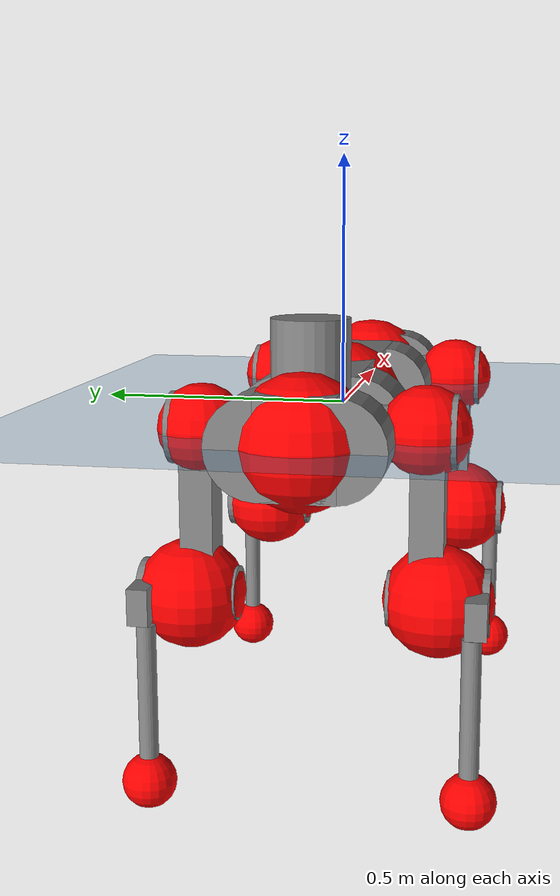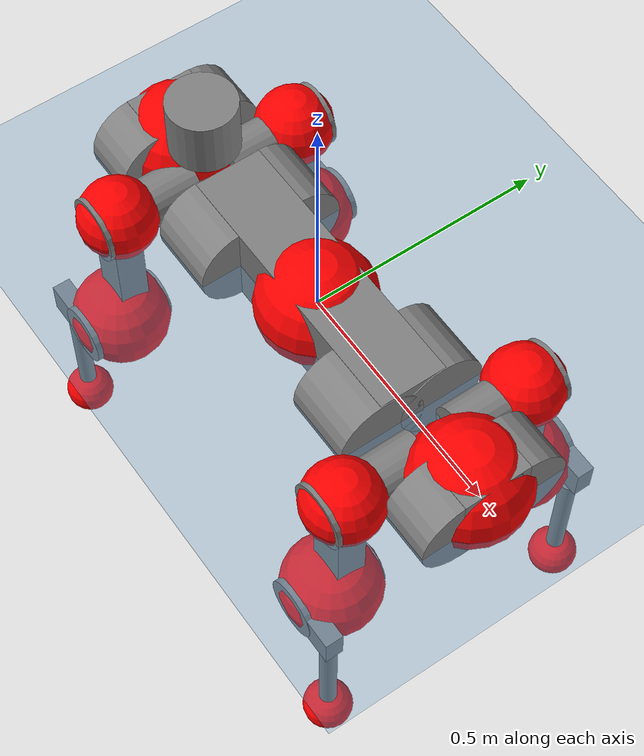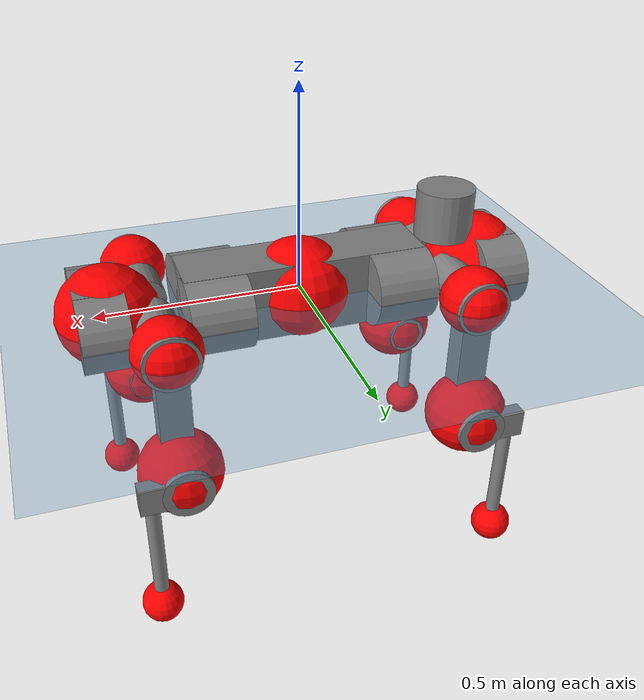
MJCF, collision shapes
<mujoco model="anymal_c">
  <compiler angle="radian" assetdir="assets" balanceinertia="true" inertiafromgeom="false"/>

  <option timestep="0.005" density="1.2" viscosity="2e-05"/>

  <size nkey="1"/>

  <visual>
    <quality shadowsize="8192"/>
    <map shadowclip="0.5"/>
  </visual>

  <default>
    <default class="/">
      <material specular="0" shininess="0.25"/>
      <geom contype="0" conaffinity="0" group="1" solref="-1000 -80"/>
      <site size="0.01 0.005 0.005" group="5"/>
      <general forcelimited="true" forcerange="-80 80" biastype="affine" gainprm="80" biasprm="0 -80 -2"/>
      <default class="anymal_c">
        <joint armature="0.01" damping="0.01" frictionloss="0.1"/>
        <default class="visual">
          <geom type="mesh" group="2"/>
          <default class="visual_zflip"/>
        </default>
        <default class="collision">
          <geom type="cylinder" group="3"/>
          <default class="foot">
            <geom size="0.03 0 0" type="sphere" condim="6" priority="1" friction="0.8 0.02 0.01" solimp="0.015 1 0.03"/>
          </default>
        </default>
      </default>
      <default class="reward_collision_sphere">
        <geom group="5" rgba="1 0 0 1"/>
      </default>
    </default>
  </default>

  <asset>
    <texture type="skybox" colorspace="auto" name="//unnamed_texture_0" builtin="gradient" rgb1="0.95 0.95 0.95" rgb2="0.95 0.95 0.95" width="100" height="600"/>
    <texture type="2d" colorspace="auto" name="texplane" builtin="checker" rgb1="0.345 0.575 0.748" rgb2="0.345 0.575 0.748" markrgb="1 1 1" width="512" height="512"/>
    <texture type="2d" colorspace="linear" name="base" file="base.png"/>
    <texture type="2d" colorspace="linear" name="top_shell" file="top_shell.png"/>
    <texture type="2d" colorspace="linear" name="bottom_shell" file="bottom_shell.png"/>
    <texture type="2d" colorspace="linear" name="remote" file="remote.png"/>
    <texture type="2d" colorspace="linear" name="hatch" file="hatch.png"/>
    <texture type="2d" colorspace="linear" name="handle" file="handle.png"/>
    <texture type="2d" colorspace="linear" name="face" file="face.png"/>
    <texture type="2d" colorspace="linear" name="battery" file="battery.png"/>
    <texture type="2d" colorspace="linear" name="lidar_cage" file="lidar_cage.png"/>
    <texture type="2d" colorspace="linear" name="depth_camera" file="depth_camera.png"/>
    <texture type="2d" colorspace="linear" name="wide_angle_camera" file="wide_angle_camera.png"/>
    <texture type="2d" colorspace="linear" name="lidar" file="lidar.png"/>
    <texture type="2d" colorspace="linear" name="drive" file="drive.png"/>
    <texture type="2d" colorspace="linear" name="hip_l" file="hip_l.png"/>
    <texture type="2d" colorspace="linear" name="shank_l" file="shank_l.png"/>
    <texture type="2d" colorspace="linear" name="foot" file="foot.png"/>
    <texture type="2d" colorspace="linear" name="thigh" file="thigh.png"/>
    <texture type="2d" colorspace="linear" name="shank_r" file="shank_r.png"/>
    <texture type="2d" colorspace="linear" name="hip_r" file="hip_r.png"/>
    <material name="MatPlane" class="/" texture="texplane" texuniform="true" texrepeat="2 2" specular="0.9" shininess="0.5"/>
    <material name="black_plastic" class="/" rgba="0.007 0.007 0.007 1"/>
    <material name="green" class="/" rgba="0.052 0.178 0.033 1"/>
    <material name="red" class="/" rgba="0.178 0.006 0.005 1"/>
    <material name="yellow" class="/" rgba="0.178 0.119 0.006 1"/>
    <material name="lwl" class="/" rgba="0.8 0.8 0.8 1"/>
    <material name="base" class="/" texture="base"/>
    <material name="top_shell" class="/" texture="top_shell"/>
    <material name="bottom_shell" class="/" texture="bottom_shell"/>
    <material name="hip_l" class="/" texture="hip_l"/>
    <material name="thigh" class="/" texture="thigh"/>
    <material name="shank_l" class="/" texture="shank_l"/>
    <material name="foot" class="/" texture="foot"/>
    <material name="hip_r" class="/" texture="hip_r"/>
    <material name="shank" class="/" texture="shank_r"/>
    <material name="hatch" class="/" texture="hatch"/>
    <material name="remote" class="/" texture="remote"/>
    <material name="handle" class="/" texture="handle"/>
    <material name="face" class="/" texture="face"/>
    <material name="depth_camera" class="/" texture="depth_camera"/>
    <material name="wide_angle_camera" class="/" texture="wide_angle_camera"/>
    <material name="battery" class="/" texture="battery"/>
    <material name="lidar_cage" class="/" texture="lidar_cage"/>
    <material name="lidar" class="/" texture="lidar"/>
    <material name="drive" class="/" texture="drive"/>
    <mesh name="base_0" class="/" file="base_0.obj"/>
    <mesh name="base_1" class="/" file="base_1.obj"/>
    <mesh name="base_2" class="/" file="base_2.obj"/>
    <mesh name="base_3" class="/" file="base_3.obj"/>
    <mesh name="base_4" class="/" file="base_4.obj"/>
    <mesh name="base_5" class="/" file="base_5.obj"/>
    <mesh name="top_shell" class="/" file="top_shell.obj"/>
    <mesh name="bottom_shell" class="/" file="bottom_shell.obj"/>
    <mesh name="remote" class="/" file="remote.obj"/>
    <mesh name="handle" class="/" file="handle.obj"/>
    <mesh name="face" class="/" file="face.obj"/>
    <mesh name="wide_angle_camera" class="/" file="wide_angle_camera.obj"/>
    <mesh name="depth_camera" class="/" file="depth_camera.obj"/>
    <mesh name="battery" class="/" file="battery.obj"/>
    <mesh name="lidar_cage" class="/" file="lidar_cage.obj"/>
    <mesh name="lidar" class="/" file="lidar.obj"/>
    <mesh name="drive" class="/" file="drive.obj"/>
    <mesh name="hip_l" class="/" file="hip_l.obj"/>
    <mesh name="thigh" class="/" file="thigh.obj"/>
    <mesh name="shank_l" class="/" file="shank_l.obj"/>
    <mesh name="foot" class="/" file="foot.obj"/>
    <mesh name="hip_r" class="/" file="hip_r.obj"/>
    <mesh name="hatch" class="/" file="hatch.obj"/>
    <mesh name="shank_r" class="/" file="shank_r.obj"/>
  </asset>

  <worldbody>
    <geom name="floor" class="/" size="100 100 0.125" type="plane" group="0" material="MatPlane"/>
    <light name="toplight_shadow" class="/" pos="0 0 5" dir="0.0990148 0.0990148 -0.990148" type="directional" ambient="0.04 0.04 0.04" diffuse="0.55 0.55 0.55" specular="0.12 0.12 0.12"/>
    <light name="toplight_fill" class="/" pos="0 0 5" dir="0.0990148 0.0990148 -0.990148" type="directional" castshadow="false" ambient="0.04 0.04 0.04" diffuse="0.3 0.3 0.3" specular="0.08 0.08 0.08"/>
    <body name="trunk" childclass="anymal_c" pos="-0.000936073 0.000211806 0.00184948" quat="0.999999 -0.0003105 -0.000800506 0.000884367">
      <inertial pos="0.00220415 -0.00201106 0.0509154" quat="0.498544 0.499542 0.501559 0.500349" mass="20.6385" diaginertia="0.750886 0.470984 0.328375"/>
      <joint name="//unnamed_joint_0" type="free" armature="0" damping="0" frictionloss="0"/>
      <geom name="//unnamed_geom_1" class="visual" material="green" mesh="base_0"/>
      <geom name="//unnamed_geom_2" class="visual" material="yellow" mesh="base_1"/>
      <geom name="//unnamed_geom_3" class="visual" material="red" mesh="base_2"/>
      <geom name="//unnamed_geom_4" class="visual" material="black_plastic" mesh="base_3"/>
      <geom name="//unnamed_geom_5" class="visual" material="lwl" mesh="base_4"/>
      <geom name="//unnamed_geom_6" class="visual" material="base" mesh="base_5"/>
      <geom name="trunk_1" class="collision" size="0.296548 0.0715805 0.0920321" type="box"/>
      <geom name="trunk_2" class="collision" size="0.0920321 0.0741369" pos="0.224751 0.0662597 0" quat="0.707107 0 0.707107 0"/>
      <geom name="trunk_3" class="collision" size="0.0920321 0.0741369" pos="-0.224751 0.0662597 0" quat="0.707107 0 0.707107 0"/>
      <geom name="trunk_4" class="collision" size="0.0920321 0.0741369" pos="0.224751 -0.0662597 0" quat="0.707107 0 0.707107 0"/>
      <geom name="trunk_5" class="collision" size="0.0920321 0.0741369" pos="-0.224751 -0.0662597 0" quat="0.707107 0 0.707107 0"/>
      <geom name="//unnamed_geom_12" class="visual" material="top_shell" mesh="top_shell"/>
      <geom name="//unnamed_geom_13" class="visual" material="bottom_shell" mesh="bottom_shell"/>
      <geom name="//unnamed_geom_14" class="visual" material="remote" mesh="remote"/>
      <geom name="//unnamed_geom_15" class="visual" material="handle" mesh="handle"/>
      <geom name="//unnamed_geom_16" class="visual" pos="0.428319 0 0" quat="1 0 0 0" material="face" mesh="face"/>
      <geom name="trunk_6" class="collision" size="0.0562418 0.0715805 0.0920321" pos="0.485153 0 0" type="box"/>
      <geom name="//unnamed_geom_18" class="collision" size="0.0920321 0.0562418" pos="0.485153 0.0662597 0" quat="0.707107 0 0.707107 0"/>
      <geom name="//unnamed_geom_19" class="collision" size="0.0920321 0.0562418" pos="0.485153 -0.0662597 0" quat="0.707107 0 0.707107 0"/>
      <geom name="//unnamed_geom_20" class="visual" pos="0.477044 0 -0.0321787" quat="0.965926 0 0.258819 0" material="depth_camera" mesh="depth_camera"/>
      <geom name="//unnamed_geom_21" class="visual" pos="0.530103 0 0.0162848" material="wide_angle_camera" mesh="wide_angle_camera"/>
      <geom name="//unnamed_geom_22" class="visual_zflip" pos="-0.428319 0 0" quat="0 0 0 1" material="face" mesh="face"/>
      <geom name="trunk_7" class="collision" size="0.0562418 0.0715805 0.0920321" pos="-0.485153 0 0" quat="0 0 0 1" type="box"/>
      <geom name="//unnamed_geom_24" class="collision" size="0.0920321 0.0562418" pos="-0.485153 -0.0662597 0" quat="0 -0.707107 0 0.707107"/>
      <geom name="//unnamed_geom_25" class="collision" size="0.0920321 0.0562418" pos="-0.485153 0.0662597 0" quat="0 -0.707107 0 0.707107"/>
      <geom name="//unnamed_geom_26" class="visual" pos="-0.477044 0 -0.0321787" quat="0 -0.258819 0 0.965926" material="depth_camera" mesh="depth_camera"/>
      <geom name="//unnamed_geom_27" class="visual_zflip" pos="-0.530103 0 0.0162848" quat="0 0 0 1" material="wide_angle_camera" mesh="wide_angle_camera"/>
      <geom name="//unnamed_geom_28" class="visual" material="battery" mesh="battery"/>
      <geom name="//unnamed_geom_29" class="visual" pos="0 0.0712381 0.0311873" quat="0.683013 -0.183013 0.183013 0.683013" material="depth_camera" mesh="depth_camera"/>
      <geom name="//unnamed_geom_30" class="visual" pos="0 -0.0712381 0.0311873" quat="0.683013 0.183013 0.183013 -0.683013" material="depth_camera" mesh="depth_camera"/>
      <geom name="//unnamed_geom_31" class="visual" pos="-0.376136 0 0.0799554" quat="1 0 0 0" material="lidar_cage" mesh="lidar_cage"/>
      <geom name="trunk_8" class="collision" size="0.0715805 0.0613547" pos="-0.376136 0 0.145225"/>
      <geom name="//unnamed_geom_33" class="visual" pos="-0.376136 -3.40909e-05 0.154689" quat="0.707107 0 0 -0.707107" material="lidar" mesh="lidar"/>
      <geom name="//unnamed_geom_34" class="visual" pos="0.309899 0.0984931 -2.43679e-09" quat="0.258819 0.965926 0 0" material="drive" mesh="drive"/>
      <geom name="//unnamed_geom_35" class="visual" pos="0.309899 -0.0984931 2.43679e-09" quat="0.258819 -0.965926 0 0" material="drive" mesh="drive"/>
      <geom name="//unnamed_geom_36" class="visual" pos="-0.309899 0.0984931 2.43679e-09" quat="0 0 0.965926 -0.258819" material="drive" mesh="drive"/>
      <geom name="//unnamed_geom_37" class="visual" pos="-0.309899 -0.0984931 -2.43679e-09" quat="0 0 -0.965926 -0.258819" material="drive" mesh="drive"/>
      <geom name="//unnamed_geom_38" class="visual" pos="0.119867 0 0.0794115" quat="1 0 0 0" material="hatch" mesh="hatch"/>
      <geom name="//unnamed_geom_39" class="reward_collision_sphere" size="0.122709"/>
      <geom name="//unnamed_geom_40" class="reward_collision_sphere" size="0.122709" pos="0.465003 0 0"/>
      <geom name="//unnamed_geom_41" class="reward_collision_sphere" size="0.122709" pos="-0.465003 0 0"/>
      <site name="imu" pos="0.264561 0.00744912 0.0427328" size="0.0102258"/>
      <camera name="track" pos="0 -1.89313 0" quat="0.707107 0.707107 0 0" mode="trackcom"/>
      <camera name="ego_camera" pos="0.465003 0 -0.0435131" quat="-0.5 -0.5 0.5 0.5"/>
      <body name="LF_HIP" pos="0.307661 0.0959601 -0.00151011" quat="0.259082 0.965855 -7.35543e-05 -0.000102623">
        <inertial pos="0.0587865 -0.0168519 -0.00781278" quat="-0.128198 0.710672 -0.134422 0.678558" mass="3.06038" diaginertia="0.00688036 0.00361027 0.0049879"/>
        <joint name="LF_HAA" pos="0 0 0" axis="0.999992 0.00360289 -0.00157473" range="-0.717989 0.535251" armature="0.00981106" damping="0.0247577" frictionloss="0.0878527"/>
        <geom name="//unnamed_geom_42" class="visual" pos="0 -0.000143345 2.35443e-05" quat="0.258819 -0.965926 0 0" material="hip_l" mesh="hip_l"/>
        <geom name="//unnamed_geom_43" class="visual" pos="0.0618971 -0.0739091 -0.0437163" quat="0.183013 -0.683013 0.683013 0.183013" material="drive" mesh="drive"/>
        <geom name="//unnamed_geom_44" class="collision" size="0.0511289 0.0715805" pos="0.0618971 -0.0113207 -0.00751146" quat="-0.353553 -0.612372 0.612372 -0.353553"/>
        <body name="LF_THIGH" pos="0.0594761 -0.0671924 -0.0439253" quat="0.183466 -0.682377 0.683477 0.183194">
          <inertial pos="0.0311005 -0.000139543 -0.264463" quat="0.993231 -0.00856082 -0.0709234 0.0915955" mass="3.21022" diaginertia="0.0362229 0.0227823 0.00657031"/>
          <joint name="LF_HFE" pos="0 0 0" axis="1 0.0001673 0.000668931" stiffness="0.00435912" range="-3.10222 3.19482" armature="0.00974078" damping="0.0203865" frictionloss="0.0879875"/>
          <geom name="//unnamed_geom_45" class="visual" pos="0.00172645 2.72048e-06 0" quat="0.707107 0 0 -0.707107" material="thigh" mesh="thigh"/>
          <geom name="//unnamed_geom_46" class="collision" size="0.0664676 0.0409031" pos="0.0413336 0 0" quat="0.5 0.5 -0.5 -0.5"/>
          <geom name="//unnamed_geom_47" class="collision" size="0.0383467 0.0306774 0.144505" pos="0.0310002 0 -0.153725" quat="0.707107 0 0 -0.707107" type="box"/>
          <geom name="//unnamed_geom_48" class="visual" pos="0.103644 0 -0.310031" quat="1 0 0 0" material="drive" mesh="drive"/>
          <geom name="//unnamed_geom_49" class="collision" size="0.0511289 0.0715805" pos="0.0313102 0 -0.310031" quat="0.707107 0 0.707107 0"/>
          <geom name="//unnamed_geom_50" class="reward_collision_sphere" size="0.0818063" pos="0.0258335 0 0"/>
          <body name="LF_SHANK" pos="0.103915 0.002045 -0.308381" quat="1 -2.94783e-06 0.000222608 -0.000364429">
            <inertial pos="0.00513031 -0.0575557 -0.0903499" quat="0.992884 -0.116295 -0.000757077 -0.0256119" mass="0.634099" diaginertia="0.0116505 0.00694495 0.0017142"/>
            <joint name="LF_KFE" pos="0 0 0" axis="0.999993 -0.00334484 -0.0014485" range="-3.08388 3.14524" armature="0.0110831" damping="0.00401337" frictionloss="0.102692"/>
            <geom name="//unnamed_geom_51" class="visual" pos="0.000562957 0.00300172 0" quat="0.707107 0 0 -0.707107" material="shank_l" mesh="shank_l"/>
            <geom name="LF_kfe_act" class="collision" size="0.0613547 0.0204516" pos="0.0206668 0 0" quat="0.5 0.5 -0.5 -0.5"/>
            <geom name="//unnamed_geom_53" class="collision" size="0.0587972 0.034512 0.019429" pos="0.0206668 -0.0544266 0" quat="0.5 0.5 -0.5 -0.5" type="box"/>
            <geom name="//unnamed_geom_54" class="visual" pos="0.013485 -0.0822832 -0.367653" quat="0.382683 0 0 -0.92388" material="foot" mesh="foot"/>
            <geom name="LF_calf" class="collision" size="0.0178951 0.144441" pos="0.0134851 -0.0832505 -0.183827" quat="0.707107 0 0 -0.707107"/>
            <geom name="LF_foot" class="foot" size="0.0304687" pos="0.0134851 -0.0832505 -0.343177" quat="0.707107 0 0 -0.707107"/>
            <geom name="//unnamed_geom_57" class="reward_collision_sphere" size="0.102258" pos="-0.051667 0 0"/>
            <geom name="//unnamed_geom_58" class="reward_collision_sphere" size="0.0511289" pos="0.0134851 -0.0832505 -0.343177"/>
            <site name="LF_foot" class="foot" pos="0.0134851 -0.0832505 -0.343177" quat="0.707107 0 0 -0.707107" size="0.0102258"/>
          </body>
        </body>
      </body>
      <body name="RF_HIP" pos="0.308799 -0.099263 -0.000635439" quat="0.258814 -0.965927 9.95121e-05 -0.000198704">
        <inertial pos="0.0558453 0.0144275 -0.0119177" quat="0.138573 0.677266 0.129756 0.710825" mass="3.00182" diaginertia="0.00666792 0.00379984 0.00483179"/>
        <joint name="RF_HAA" pos="0 0 0" axis="0.999943 -0.00427909 -0.00981994" range="-0.500994 0.718014" armature="0.0105013" damping="0" frictionloss="0.112514"/>
        <geom name="//unnamed_geom_59" class="visual" pos="0 0.000143344 2.35443e-05" quat="0.258819 0.965926 0 0" material="hip_r" mesh="hip_r"/>
        <geom name="//unnamed_geom_60" class="visual" pos="0.0618971 0.0739091 -0.0437163" quat="0.183013 0.683013 0.683013 -0.183013" material="drive" mesh="drive"/>
        <geom name="//unnamed_geom_61" class="collision" size="0.0511289 0.0715805" pos="0.0618971 0.0113207 -0.00751146" quat="-0.353553 0.612372 0.612372 0.353553"/>
        <body name="RF_THIGH" pos="0.0648833 0.0663843 -0.047583" quat="0.182664 0.682601 0.683645 -0.182536">
          <inertial pos="0.0333154 -0.00157705 -0.269827" quat="0.991984 -0.0166101 -0.0888531 0.0883035" mass="3.38397" diaginertia="0.0343526 0.0220512 0.00648583"/>
          <joint name="RF_HFE" pos="0 0 0" axis="0.999998 -9.86902e-05 0.00208667" range="-3.10746 3.13888" armature="0.00891174" damping="0.0114262" frictionloss="0.114159"/>
          <geom name="//unnamed_geom_62" class="visual" pos="0.00172645 2.72048e-06 0" quat="0.707107 0 0 -0.707107" material="thigh" mesh="thigh"/>
          <geom name="//unnamed_geom_63" class="collision" size="0.0664676 0.0409031" pos="0.0413336 0 0" quat="0.5 0.5 0.5 0.5"/>
          <geom name="//unnamed_geom_64" class="collision" size="0.0383467 0.0306774 0.144505" pos="0.0310002 0 -0.153725" quat="0.707107 0 0 0.707107" type="box"/>
          <geom name="//unnamed_geom_65" class="visual" pos="0.103644 0 -0.310031" quat="1 0 0 0" material="drive" mesh="drive"/>
          <geom name="//unnamed_geom_66" class="collision" size="0.0511289 0.0715805" pos="0.0313102 0 -0.310031" quat="0.707107 0 0.707107 0"/>
          <geom name="//unnamed_geom_67" class="reward_collision_sphere" size="0.0818063" pos="0.0258335 0 0"/>
          <body name="RF_SHANK" pos="0.100475 0.000824691 -0.311095" quat="0.999999 -0.000331511 0.000857352 -0.00104553">
            <inertial pos="0.00322906 0.0579473 -0.0874061" quat="0.99238 0.120275 0.000331516 0.0267386" mass="0.671854" diaginertia="0.0127041 0.00701415 0.00177011"/>
            <joint name="RF_KFE" pos="0 0 0" axis="0.999989 0.00163632 0.00446711" range="-3.1665 3.08036" armature="0.0116112" damping="0.0156395" frictionloss="0.11497"/>
            <geom name="//unnamed_geom_68" class="visual" pos="0.000562954 -0.00300171 0" quat="0.707107 0 0 0.707107" material="shank" mesh="shank_r"/>
            <geom name="RF_kfe_act" class="collision" size="0.0613547 0.0204516" pos="0.0206668 0 0" quat="0.5 0.5 0.5 0.5"/>
            <geom name="//unnamed_geom_70" class="collision" size="0.0587972 0.034512 0.019429" pos="0.0206668 0.0544266 0" quat="0.5 0.5 0.5 0.5" type="box"/>
            <geom name="//unnamed_geom_71" class="visual" pos="0.0134852 0.0822832 -0.367653" quat="0.382683 0 0 0.92388" material="foot" mesh="foot"/>
            <geom name="RF_calf" class="collision" size="0.0178951 0.144441" pos="0.0134851 0.0832505 -0.183827" quat="0.707107 0 0 0.707107"/>
            <geom name="RF_foot" class="foot" size="0.0278517" pos="0.0134851 0.0832505 -0.343177" quat="0.707107 0 0 0.707107"/>
            <geom name="//unnamed_geom_74" class="reward_collision_sphere" size="0.102258" pos="-0.051667 0 0"/>
            <geom name="//unnamed_geom_75" class="reward_collision_sphere" size="0.0511289" pos="0.0134851 0.0832505 -0.343177"/>
            <site name="RF_foot" class="foot" pos="0.0134851 0.0832505 -0.343177" quat="0.707107 0 0 0.707107" size="0.0102258"/>
          </body>
        </body>
      </body>
      <body name="LH_HIP" pos="-0.307622 0.096251 -0.00148842" quat="0.000274749 0.000317893 0.965819 -0.259217">
        <inertial pos="0.0588552 0.0170626 -0.0101696" quat="0.141871 0.685886 0.126163 0.702507" mass="3.01704" diaginertia="0.00702785 0.00377713 0.00491772"/>
        <joint name="LH_HAA" pos="0 0 0" axis="0.999919 -0.00481452 0.0118227" range="-0.492456 0.76304" armature="0.0108144" damping="0.00279006" frictionloss="0.101741"/>
        <geom name="//unnamed_geom_76" class="visual" pos="0 0.000143344 2.35443e-05" quat="-0.258819 -0.965926 0 0" material="hip_r" mesh="hip_r"/>
        <geom name="//unnamed_geom_77" class="visual" pos="0.0618971 0.0739091 -0.0437163" quat="0.183013 0.683013 0.683013 -0.183013" material="drive" mesh="drive"/>
        <geom name="//unnamed_geom_78" class="collision" size="0.0511289 0.0715805" pos="0.0618971 0.0113207 -0.00751146" quat="-0.353553 0.612372 0.612372 0.353553"/>
        <body name="LH_THIGH" pos="0.0611388 0.0669656 -0.0437936" quat="0.183553 0.682749 0.683188 -0.182799">
          <inertial pos="0.0315148 0.00158199 -0.268283" quat="0.992944 -0.00559998 -0.0796956 0.0876323" mass="3.08003" diaginertia="0.0341104 0.022687 0.00630966"/>
          <joint name="LH_HFE" pos="0 0 0" axis="1 -0.000524148 -0.000115995" stiffness="0.00610316" range="-3.19648 3.08328" armature="0.0103002" damping="0" frictionloss="0.103051"/>
          <geom name="//unnamed_geom_79" class="visual" pos="0.00172645 2.72048e-06 0" quat="0.707107 0 0 -0.707107" material="thigh" mesh="thigh"/>
          <geom name="//unnamed_geom_80" class="collision" size="0.0664676 0.0409031" pos="0.0413336 0 0" quat="0.5 0.5 -0.5 -0.5"/>
          <geom name="//unnamed_geom_81" class="collision" size="0.0383467 0.0306774 0.144505" pos="0.0310002 0 -0.153725" quat="0.707107 0 0 -0.707107" type="box"/>
          <geom name="//unnamed_geom_82" class="visual" pos="0.103644 0 -0.310031" quat="1 0 0 0" material="drive" mesh="drive"/>
          <geom name="//unnamed_geom_83" class="collision" size="0.0511289 0.0715805" pos="0.0313102 0 -0.310031" quat="0.707107 0 0.707107 0"/>
          <geom name="//unnamed_geom_84" class="reward_collision_sphere" size="0.0818063" pos="0.0258335 0 0"/>
          <body name="LH_SHANK" pos="0.102078 0.0011375 -0.312517" quat="1 -5.82572e-05 -0.000107486 8.33233e-05">
            <inertial pos="0.00835308 0.0598879 -0.0893446" quat="0.991168 0.129108 -0.00201736 0.0302144" mass="0.633344" diaginertia="0.0115915 0.0072243 0.00174185"/>
            <joint name="LH_KFE" pos="0 0 0" axis="1 -0.00033438 -0.000938704" stiffness="0.00290914" range="-3.10033 3.08407" armature="0.010997" damping="0.0165183" frictionloss="0.0904603"/>
            <geom name="//unnamed_geom_85" class="visual" pos="0.000562954 -0.00300171 0" quat="-0.707107 0 0 -0.707107" material="shank" mesh="shank_r"/>
            <geom name="LH_kfe_act" class="collision" size="0.0613547 0.0204516" pos="0.0206668 0 0" quat="0.5 0.5 -0.5 -0.5"/>
            <geom name="//unnamed_geom_87" class="collision" size="0.0587972 0.034512 0.019429" pos="0.0206668 0.0544266 0" quat="0.5 0.5 -0.5 -0.5" type="box"/>
            <geom name="//unnamed_geom_88" class="visual" pos="0.0134852 0.0822832 -0.367653" quat="-0.382683 0 0 -0.92388" material="foot" mesh="foot"/>
            <geom name="LH_calf" class="collision" size="0.0178951 0.144441" pos="0.0134851 0.0832505 -0.183827" quat="0.707107 0 0 -0.707107"/>
            <geom name="LH_foot" class="foot" size="0.0356387" pos="0.0134851 0.0832505 -0.343177" quat="0.707107 0 0 -0.707107"/>
            <geom name="//unnamed_geom_91" class="reward_collision_sphere" size="0.102258" pos="-0.051667 0 0"/>
            <geom name="//unnamed_geom_92" class="reward_collision_sphere" size="0.0511289" pos="0.0134851 0.0832505 -0.343177"/>
            <site name="LH_foot" class="foot" pos="0.0134851 0.0832505 -0.343177" quat="0.707107 0 0 -0.707107" size="0.0102258"/>
          </body>
        </body>
      </body>
      <body name="RH_HIP" pos="-0.309475 -0.099133 0.00256696" quat="0.0001232 9.96566e-05 -0.965908 -0.258887">
        <inertial pos="0.0557254 -0.0118606 -0.0102619" quat="-0.127653 0.709979 -0.134798 0.679312" mass="3.03752" diaginertia="0.00685715 0.00371666 0.00498952"/>
        <joint name="RH_HAA" pos="0 0 0" axis="0.999963 -0.00204846 -0.00829713" range="-0.758478 0.548271" armature="0.00904627" damping="0" frictionloss="0.101933"/>
        <geom name="//unnamed_geom_93" class="visual" pos="0 -0.000143345 2.35443e-05" quat="-0.258819 0.965926 0 0" material="hip_l" mesh="hip_l"/>
        <geom name="//unnamed_geom_94" class="visual" pos="0.0618971 -0.0739091 -0.0437163" quat="-0.183013 0.683013 -0.683013 -0.183013" material="drive" mesh="drive"/>
        <geom name="//unnamed_geom_95" class="collision" size="0.0511289 0.0715805" pos="0.0618971 -0.0113207 -0.00751146" quat="0.353553 0.612372 -0.612372 0.353553"/>
        <body name="RH_THIGH" pos="0.062799 -0.0664377 -0.0467476" quat="-0.183813 0.682873 -0.682761 -0.183671">
          <inertial pos="0.0312027 0.00271339 -0.266327" quat="0.993182 -0.00548135 -0.0809523 0.0837052" mass="3.06266" diaginertia="0.0332539 0.0221913 0.00620117"/>
          <joint name="RH_HFE" pos="0 0 0" axis="1 -8.47948e-05 0.00035381" range="-3.08469 3.12027" armature="0.0102711" damping="0.0204772" frictionloss="0.0996385"/>
          <geom name="//unnamed_geom_96" class="visual" pos="0.00172645 2.72048e-06 0" quat="0.707107 0 0 -0.707107" material="thigh" mesh="thigh"/>
          <geom name="//unnamed_geom_97" class="collision" size="0.0664676 0.0409031" pos="0.0413336 0 0" quat="0.5 0.5 0.5 0.5"/>
          <geom name="//unnamed_geom_98" class="collision" size="0.0383467 0.0306774 0.144505" pos="0.0310002 0 -0.153725" quat="0.707107 0 0 0.707107" type="box"/>
          <geom name="//unnamed_geom_99" class="visual" pos="0.103644 0 -0.310031" quat="1 0 0 0" material="drive" mesh="drive"/>
          <geom name="//unnamed_geom_100" class="collision" size="0.0511289 0.0715805" pos="0.0313102 0 -0.310031" quat="0.707107 0 0.707107 0"/>
          <geom name="//unnamed_geom_101" class="reward_collision_sphere" size="0.0818063" pos="0.0258335 0 0"/>
          <body name="RH_SHANK" pos="0.103319 0.00221138 -0.310833" quat="1 0.000706485 -1.3308e-05 0.000256081">
            <inertial pos="0.00810033 -0.0602656 -0.0866843" quat="0.99391 -0.107624 -0.0100043 -0.0214314" mass="0.628872" diaginertia="0.0116242 0.00701588 0.00165228"/>
            <joint name="RH_KFE" pos="0 0 0" axis="0.999959 -0.000747331 -0.00900477" range="-3.11843 3.17171" armature="0.00993251" damping="0.0161097" frictionloss="0.114796"/>
            <geom name="//unnamed_geom_102" class="visual" pos="0.000562957 0.00300172 0" quat="0.707107 0 0 -0.707107" material="shank_l" mesh="shank_l"/>
            <geom name="RH_kfe_act" class="collision" size="0.0613547 0.0204516" pos="0.0206668 0 0" quat="0.5 0.5 0.5 0.5"/>
            <geom name="//unnamed_geom_104" class="collision" size="0.0587972 0.034512 0.019429" pos="0.0206668 -0.0544266 0" quat="0.5 0.5 0.5 0.5" type="box"/>
            <geom name="//unnamed_geom_105" class="visual" pos="0.013485 -0.0822832 -0.367653" quat="0.382683 0 0 -0.92388" material="foot" mesh="foot"/>
            <geom name="RH_calf" class="collision" size="0.0178951 0.144441" pos="0.0134851 -0.0832505 -0.183827" quat="0.707107 0 0 0.707107"/>
            <geom name="RH_foot" class="foot" size="0.0264741" pos="0.0134851 -0.0832505 -0.343177" quat="0.707107 0 0 0.707107"/>
            <geom name="//unnamed_geom_108" class="reward_collision_sphere" size="0.102258" pos="-0.051667 0 0"/>
            <geom name="//unnamed_geom_109" class="reward_collision_sphere" size="0.0511289" pos="0.0134851 -0.0832505 -0.343177"/>
            <site name="RH_foot" class="foot" pos="0.0134851 -0.0832505 -0.343177" quat="0.707107 0 0 0.707107" size="0.0102258"/>
          </body>
        </body>
      </body>
    </body>
  </worldbody>

  <contact>
    <pair class="/" geom1="floor" geom2="LF_foot" name="//unnamed_contact_0"/>
    <pair class="/" geom1="floor" geom2="RF_foot" name="//unnamed_contact_1"/>
    <pair class="/" geom1="floor" geom2="LH_foot" name="//unnamed_contact_2"/>
    <pair class="/" geom1="floor" geom2="RH_foot" name="//unnamed_contact_3"/>
  </contact>

  <actuator>
    <general name="LF_HAA" class="/" joint="LF_HAA" forcerange="-74.5073 74.5073" gainprm="76.1649" biasprm="0 -76.1649 -1.99033"/>
    <general name="LF_HFE" class="/" joint="LF_HFE" forcerange="-77.9776 77.9776" gainprm="76.1649" biasprm="0 -76.1649 -1.99033"/>
    <general name="LF_KFE" class="/" joint="LF_KFE" forcerange="-77.2773 77.2773" gainprm="76.1649" biasprm="0 -76.1649 -1.99033"/>
    <general name="RF_HAA" class="/" joint="RF_HAA" forcerange="-79.4439 79.4439" gainprm="76.1649" biasprm="0 -76.1649 -1.99033"/>
    <general name="RF_HFE" class="/" joint="RF_HFE" forcerange="-91.4697 91.4697" gainprm="76.1649" biasprm="0 -76.1649 -1.99033"/>
    <general name="RF_KFE" class="/" joint="RF_KFE" forcerange="-81.6944 81.6944" gainprm="76.1649" biasprm="0 -76.1649 -1.99033"/>
    <general name="LH_HAA" class="/" joint="LH_HAA" forcerange="-81.6283 81.6283" gainprm="76.1649" biasprm="0 -76.1649 -1.99033"/>
    <general name="LH_HFE" class="/" joint="LH_HFE" forcerange="-73.9731 73.9731" gainprm="76.1649" biasprm="0 -76.1649 -1.99033"/>
    <general name="LH_KFE" class="/" joint="LH_KFE" forcerange="-89.8477 89.8477" gainprm="76.1649" biasprm="0 -76.1649 -1.99033"/>
    <general name="RH_HAA" class="/" joint="RH_HAA" forcerange="-84.7126 84.7126" gainprm="76.1649" biasprm="0 -76.1649 -1.99033"/>
    <general name="RH_HFE" class="/" joint="RH_HFE" forcerange="-88.5283 88.5283" gainprm="76.1649" biasprm="0 -76.1649 -1.99033"/>
    <general name="RH_KFE" class="/" joint="RH_KFE" forcerange="-83.5619 83.5619" gainprm="76.1649" biasprm="0 -76.1649 -1.99033"/>
  </actuator>

  <sensor>
    <gyro site="imu" name="imu_angular_velocity"/>
    <velocimeter site="imu" name="imu_linear_velocity"/>
    <framelinvel objtype="site" objname="LF_foot" name="LF_foot_global_linear_velocity"/>
    <framelinvel objtype="site" objname="RF_foot" name="RF_foot_global_linear_velocity"/>
    <framelinvel objtype="site" objname="LH_foot" name="LH_foot_global_linear_velocity"/>
    <framelinvel objtype="site" objname="RH_foot" name="RH_foot_global_linear_velocity"/>
  </sensor>

  <keyframe>
    <key name="home" qpos="0 0 0.55 1 0 0 0 0 0.4 -0.8 0 -0.4 0.8 0 -0.4 0.8 0 0.4 -0.8"/>
  </keyframe>
</mujoco>
